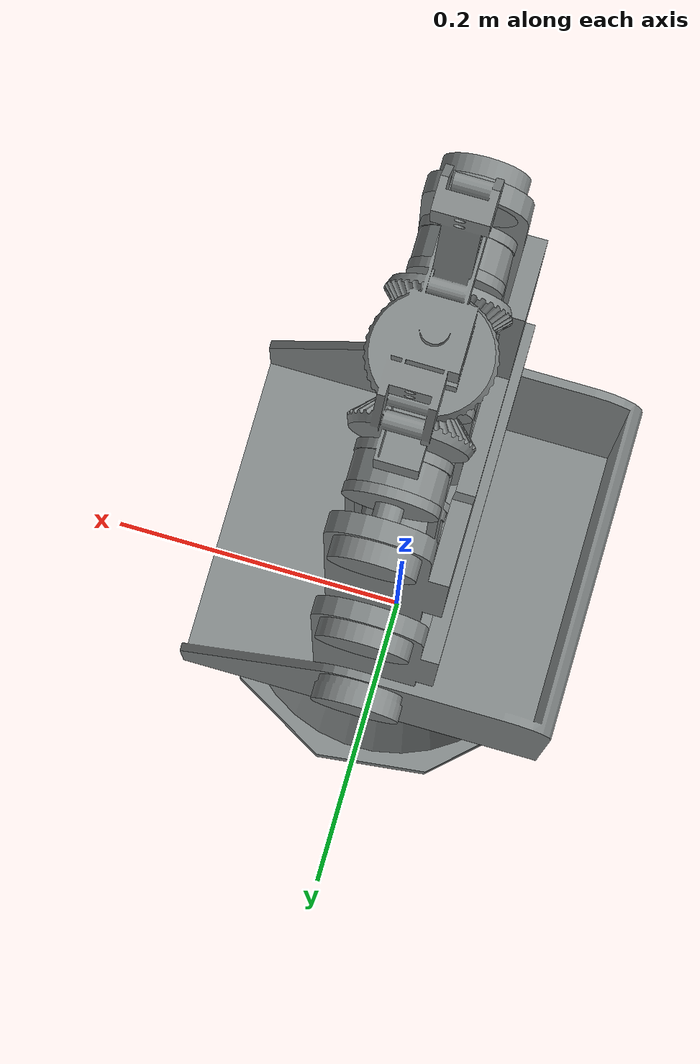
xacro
<?xml version="1.0" encoding="utf-8"?>
<robot name="scorbot" xmlns:xacro="http://ros.org/wiki/xacro" >

  <link name="world"/>

  <joint name="joint_world" type="fixed" >
    <parent link="world" />
    <child link="base_link" />
    <origin xyz="0.0 0.0 0.0" rpy="0.0 0.0 0.0" />
  </joint>

  <link
    name="base_link">
    <inertial>
      <origin
        xyz="3.57353036051222E-16 0 0.0959467613422253"
        rpy="0 0 0" />
      <mass
        value="44.2535272283148" />
      <inertia
        ixx="0.247896294723323"
        ixy="-4.16333634234434E-17"
        ixz="-3.79623896820991E-16"
        iyy="0.247896294723323"
        iyz="6.12958935067386E-17"
        izz="0.212101712141814" />
    </inertial>
    <visual>
      <origin
        xyz="0 0 0"
        rpy="0 0 0" />
      <geometry>
        <mesh
          filename="package://scorbot_description/meshes/base_link.STL" />
      </geometry>
      <material
        name="yellow">
        <color
          rgba="0.529411764705882 0.549019607843137 0.549019607843137 1" />
      </material>
    </visual>
    <collision>
      <origin
        xyz="0 0 0"
        rpy="0 0 0" />
      <geometry>
        <mesh
          filename="package://scorbot_description/meshes/base_link.STL" />
      </geometry>
    </collision>
  </link>
  <link
    name="Link_1">
    <inertial>
      <origin
        xyz="-0.0393024891683798 1.38777878078145E-16 -0.0874617547525774"
        rpy="0 0 0" />
      <mass
        value="5.94250216126264" />
      <inertia
        ixx="0.0488063937041339"
        ixy="5.5944832100252E-17"
        ixz="0.00772319680952084"
        iyy="0.0448674445167095"
        iyz="6.00070153152218E-17"
        izz="0.0629004503463325" />
    </inertial>
    <visual>
      <origin
        xyz="0 0 0"
        rpy="0 0 0" />
      <geometry>
        <mesh
          filename="package://scorbot_description/meshes/Link_1.STL" />
      </geometry>
      <material
        name="blue">
        <color
          rgba="0.529411764705882 0.549019607843137 0.549019607843137 1" />
      </material>
    </visual>
    <collision>
      <origin
        xyz="0 0 0"
        rpy="0 0 0" />
      <geometry>
        <mesh
          filename="package://scorbot_description/meshes/Link_1.STL" />
      </geometry>
    </collision>
  </link>
  <joint
    name="joint_1"
    type="revolute">
    <origin
      xyz="0 0 0.362"
      rpy="0 0 0" />
    <parent
      link="base_link" />
    <child
      link="Link_1" />
    <axis
      xyz="0 0 1" />
    <limit
      lower="0"
      upper="1.5708"
      effort="10"
      velocity="2" />
  </joint>
  <link
    name="Link_2">
    <inertial>
      <origin
        xyz="-0.00962335232420992 8.32667268468867E-17 0.0786981470078051"
        rpy="0 0 0" />
      <mass
        value="5.92901497084969" />
      <inertia
        ixx="0.0204163441806219"
        ixy="-6.50521303491303E-19"
        ixz="2.23710864908789E-17"
        iyy="0.0149522802458732"
        iyz="7.27587289552345E-18"
        izz="0.00762399978976403" />
    </inertial>
    <visual>
      <origin
        xyz="0 0 0"
        rpy="0 0 0" />
      <geometry>
        <mesh
          filename="package://scorbot_description/meshes/Link_2.STL" />
      </geometry>
      <material
        name="black">
        <color
          rgba="0.529411764705882 0.549019607843137 0.549019607843137 1" />
      </material>
    </visual>
    <collision>
      <origin
        xyz="0 0 0"
        rpy="0 0 0" />
      <geometry>
        <mesh
          filename="package://scorbot_description/meshes/Link_2.STL" />
      </geometry>
    </collision>
  </link>
  <joint
    name="joint_2"
    type="revolute">
    <origin
      xyz="0 0 0"
      rpy="0 0 0" />
    <parent
      link="Link_1" />
    <child
      link="Link_2" />
    <axis
      xyz="0 1 0" />
    <limit
      lower="0"
      upper="1.5708"
      effort="10"
      velocity="2" />
  </joint>
  <link
    name="Link_3">
    <inertial>
      <origin
        xyz="-0.00667311688772381 -1.66533453693773E-16 0.0732055879080055"
        rpy="0 0 0" />
      <mass
        value="4.84788451098674" />
      <inertia
        ixx="0.0164706779946934"
        ixy="6.50521303491303E-19"
        ixz="2.22922656348282E-17"
        iyy="0.011735256889825"
        iyz="-1.5894285408225E-19"
        izz="0.00623253485779257" />
    </inertial>
    <visual>
      <origin
        xyz="0 0 0"
        rpy="0 0 0" />
      <geometry>
        <mesh
          filename="package://scorbot_description/meshes/Link_3.STL" />
      </geometry>
      <material
        name="green">
        <color
          rgba="0.529411764705882 0.549019607843137 0.549019607843137 1" />
      </material>
    </visual>
    <collision>
      <origin
        xyz="0 0 0"
        rpy="0 0 0" />
      <geometry>
        <mesh
          filename="package://scorbot_description/meshes/Link_3.STL" />
      </geometry>
    </collision>
  </link>
  <joint
    name="joint_3"
    type="revolute">
    <origin
      xyz="0 0 0.22"
      rpy="0 0 0" />
    <parent
      link="Link_2" />
    <child
      link="Link_3" />
    <axis
      xyz="0 1 0" />
    <limit
      lower="0"
      upper="1.5708"
      effort="10"
      velocity="2" />
  </joint>
  <link
    name="Link_4">
    <inertial>
      <origin
        xyz="1.95850198032553E-05 1.1685798894906E-05 0.0164517277716482"
        rpy="0 0 0" />
      <mass
        value="2.84057550912738" />
      <inertia
        ixx="0.00120052693410438"
        ixy="-4.75839738434385E-12"
        ixz="-6.3328563496909E-12"
        iyy="0.00109014194402835"
        iyz="-9.59491723665103E-08"
        izz="0.000658884515276176" />
    </inertial>
    <visual>
      <origin
        xyz="0 0 0"
        rpy="0 0 0" />
      <geometry>
        <mesh
          filename="package://scorbot_description/meshes/Link_4.STL" />
      </geometry>
      <material
        name="red">
        <color
          rgba="0.529411764705882 0.549019607843137 0.549019607843137 1" />
      </material>
    </visual>
    <collision>
      <origin
        xyz="0 0 0"
        rpy="0 0 0" />
      <geometry>
        <mesh
          filename="package://scorbot_description/meshes/Link_4.STL" />
      </geometry>
    </collision>
  </link>
  <joint
    name="joint_4"
    type="revolute">
    <origin
      xyz="0 0 0.22"
      rpy="0 0 0" />
    <parent
      link="Link_3" />
    <child
      link="Link_4" />
    <axis
      xyz="0 1 0" />
    <limit
      lower="0"
      upper="1.5708"
      effort="10"
      velocity="2" />
  </joint>

</robot>
